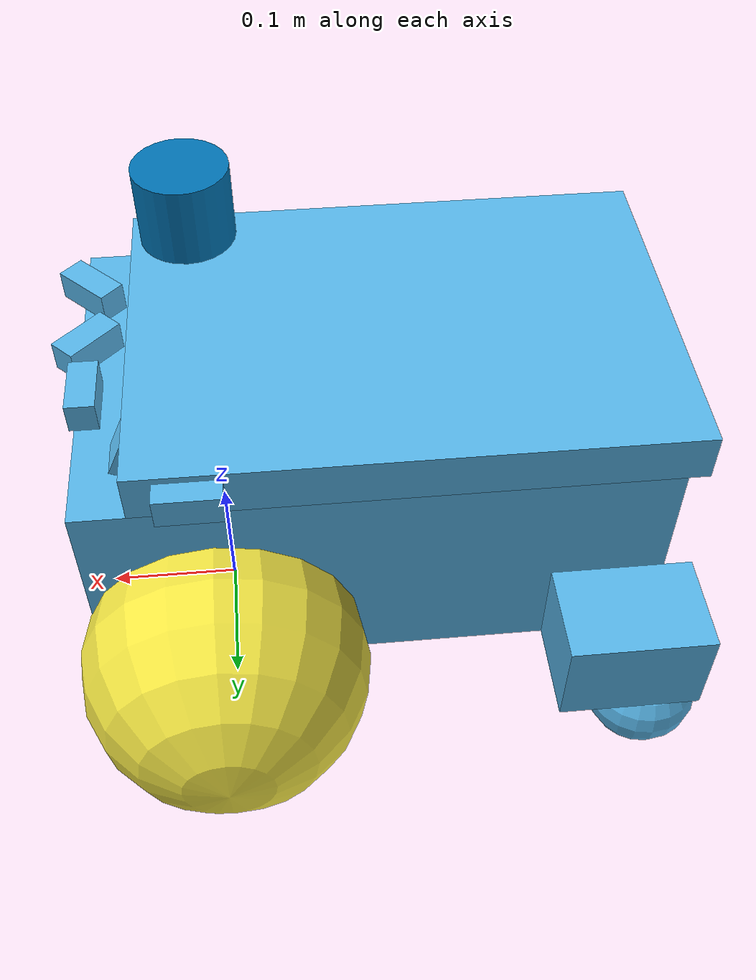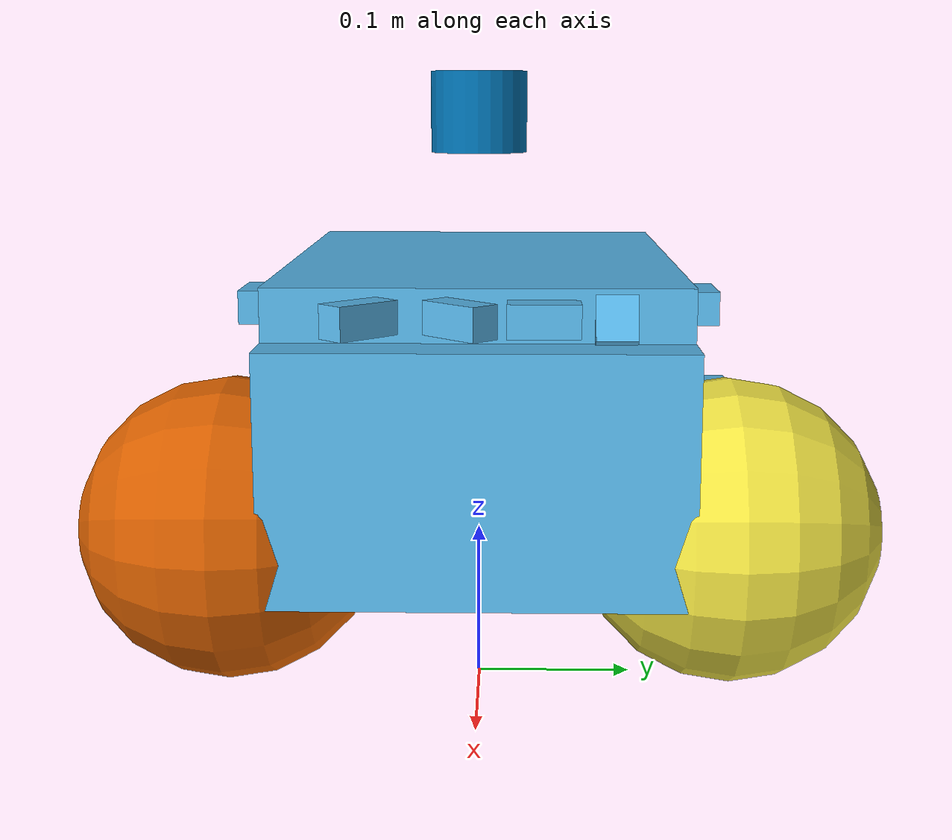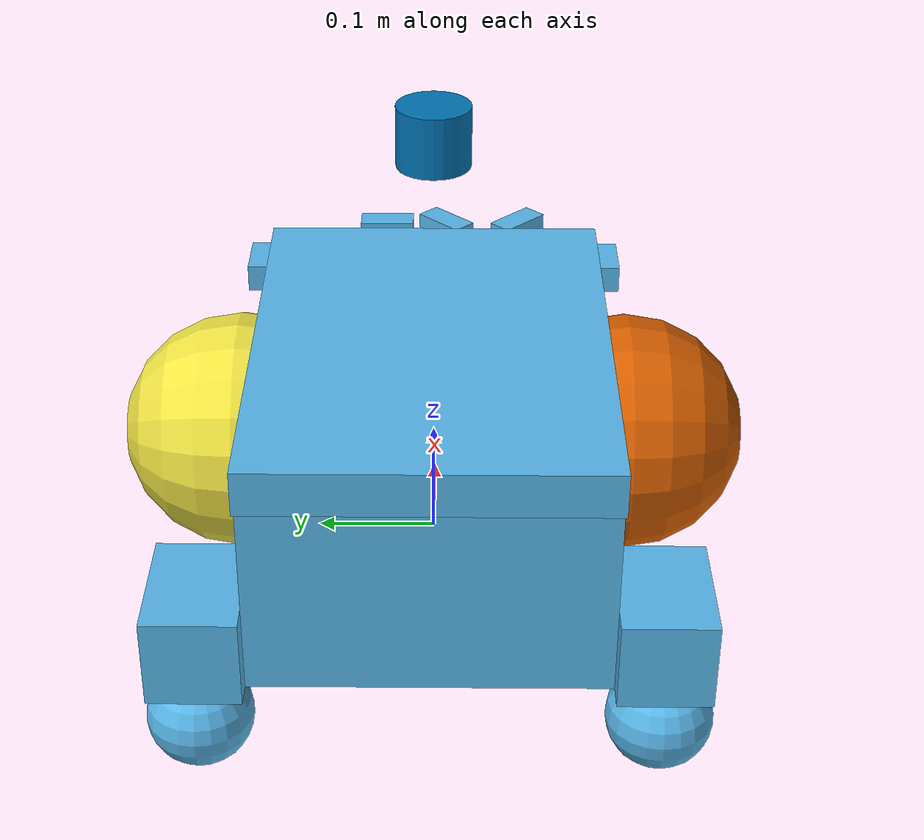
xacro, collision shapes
<robot name="fishbot"
    xmlns:xacro="http://www.ros.org/wiki/xacro">
    <xacro:arg name="namespace" default="" />
    <link name="base_footprint">
        <inertial>
            <mass value="1" />
            <origin xyz="0 0 0" rpy="0 -0 0" />
            <inertia ixx="1" ixy="0" ixz="0" iyy="1" iyz="0" izz="1" />
        </inertial>
    </link>
    <link name="base_link">
        <inertial>
            <mass value="7" />
            <origin xyz="-0.15 0 0.13" rpy="0 -0 0" />
            <inertia ixx="0.0594508" ixy="0" ixz="-2.77556e-17" iyy="0.150753" iyz="0" izz="0.172704" />
        </inertial>
        <visual>
            <origin xyz="-0.11 0 0.071" rpy="0 -0 0" />
            <geometry>
                <mesh filename="package://orient_description/fishbot/meshes/body.dae" scale="1 1 1" />
            </geometry>
        </visual>
        <visual>
            <origin xyz="-0.279 0.17 0.09" rpy="0 0 -3.14159" />
            <geometry>
                <mesh filename="package://orient_description/fishbot/meshes/caster_wheel.dae" scale="1 1 1" />
            </geometry>
        </visual>
        <visual>
            <origin xyz="-0.279 -0.17 0.09" rpy="0 0 -3.14159" />
            <geometry>
                <mesh filename="package://orient_description/fishbot/meshes/caster_wheel.dae" scale="1 1 1" />
            </geometry>
        </visual>
        <collision>
            <origin xyz="-0.11 0 0.151" rpy="0 -0 0" />
            <geometry>
                <box size="0.398 0.268 0.16" />
            </geometry>
        </collision>
        <collision>
            <origin xyz="-0.136 0 0.248" rpy="0 -0 0" />
            <geometry>
                <box size="0.375 0.268 0.034" />
            </geometry>
        </collision>
        <collision>
            <origin xyz="-0.279 0.169 0.106" rpy="0 -0 0" />
            <geometry>
                <box size="0.1 0.07 0.07" />
            </geometry>
        </collision>
        <collision>
            <origin xyz="-0.279 -0.169 0.106" rpy="0 -0 0" />
            <geometry>
                <box size="0.1 0.07 0.07" />
            </geometry>
        </collision>
        <collision>
            <origin xyz="-0.3 0.169 0.04" rpy="0 -0 0" />
            <geometry>
                <sphere radius="0.04" />
            </geometry>
        </collision>
        <collision>
            <origin xyz="0.05 0.085 0.245" rpy="0 -1.15192 3.1415" />
            <geometry>
                <box size="0.03 0.026 0.016" />
            </geometry>
        </collision>
        <collision>
            <origin xyz="-0.3 -0.169 0.04" rpy="0 -0 0" />
            <geometry>
                <sphere radius="0.04" />
            </geometry>
        </collision>
        <collision>
            <origin xyz="0.01 -0.14 0.25" rpy="0 0 -1.5708" />
            <geometry>
                <box size="0.02 0.044 0.021" />
            </geometry>
        </collision>
        <collision>
            <origin xyz="0.08 -0.07 0.25" rpy="0 -0 0.785" />
            <geometry>
                <box size="0.02 0.044 0.021" />
            </geometry>
        </collision>
        <collision>
            <origin xyz="0.08 -0.01 0.25" rpy="0 0 -0.785" />
            <geometry>
                <box size="0.02 0.044 0.021" />
            </geometry>
        </collision>
        <collision>
            <origin xyz="0.08 0.04 0.25" rpy="0 -0 0" />
            <geometry>
                <box size="0.02 0.044 0.021" />
            </geometry>
        </collision>
        <collision>
            <origin xyz="0.01 0.14 0.25" rpy="0 -0 1.5708" />
            <geometry>
                <box size="0.02 0.044 0.021" />
            </geometry>
        </collision>
    </link>
    <link name="imu_link">
        <inertial>
            <mass value="0.1" />
            <origin xyz="0 0 0" rpy="0 -0 0" />
            <inertia ixx="0.0001" ixy="0" ixz="0" iyy="0.0001" iyz="0" izz="0.0001" />
        </inertial>
        <visual>
            <origin xyz="0 0 0" rpy="0 -0 0" />
            <geometry>
                <box size="0.05 0.05 0.02" />
            </geometry>
            <material name="blue">
                <color rgba="0 0 0.8 1" />
            </material>
        </visual>
        <collision>
            <origin xyz="0 0 0" rpy="0 -0 0" />
            <geometry>
                <box size="0.05 0.05 0.02" />
            </geometry>
        </collision>
    </link>
    <link name="left_wheel">
        <inertial>
            <mass value="3.34" />
            <origin xyz="2.77556e-17 -1.38778e-17 0" rpy="0 1.5708 -1.67887e-11" />
            <inertia ixx="0.00904583" ixy="0" ixz="0" iyy="0.00904583" iyz="0" izz="0.0167" />
        </inertial>
        <visual>
            <origin xyz="-0.071 -2.77556e-17 0" rpy="0 -0 0" />
            <geometry>
                <mesh filename="package://orient_description/fishbot/meshes/front_wheel.dae" scale="1 1 1" />
            </geometry>
        </visual>
        <collision>
            <origin xyz="5.55112e-17 -2.77556e-17 0" rpy="0 1.5708 -1.67887e-11" />
            <geometry>
                <sphere radius="0.1" />
            </geometry>
        </collision>
    </link>
    <link name="lidar_link">
        <inertial>
            <mass value="0.01" />
            <origin xyz="0 0 0" rpy="0 -0 0" />
            <inertia ixx="1e-06" ixy="0" ixz="0" iyy="1e-06" iyz="0" izz="1e-06" />
        </inertial>
        <visual>
            <origin xyz="0 0 0" rpy="0 -0 0" />
            <geometry>
                <mesh filename="package://orient_description/fishbot/meshes/sensors/R2000.dae" scale="0.001 0.001 0.001" />
            </geometry>
        </visual>
        <collision>
            <origin xyz="0 0 0" rpy="0 -0 0" />
            <geometry>
                <cylinder radius="0.03" length="0.05" />
            </geometry>
        </collision>
    </link>
    <link name="right_wheel">
        <inertial>
            <mass value="3.34" />
            <origin xyz="-2.77556e-17 1.38778e-17 0" rpy="0 1.5708 -1.67887e-11" />
            <inertia ixx="0.00904583" ixy="0" ixz="0" iyy="0.00904583" iyz="0" izz="0.0167" />
        </inertial>
        <visual>
            <origin xyz="0.071 2.77556e-17 0" rpy="-3.14159 -0 -3.14159" />
            <geometry>
                <mesh filename="package://orient_description/fishbot/meshes/front_wheel.dae" scale="1 1 1" />
            </geometry>
        </visual>
        <collision>
            <origin xyz="-5.55112e-17 2.77556e-17 0" rpy="0 1.5708 -1.67887e-11" />
            <geometry>
                <sphere radius="0.1" />
            </geometry>
        </collision>
    </link>
    <joint name="base_link_joint" type="fixed">
        <origin xyz="0 0 0" rpy="0 -0 0" />
        <axis xyz="0 0 0" />
        <parent link="base_footprint" />
        <child link="base_link" />
    </joint>
    <joint name="imu_fixed_joint" type="fixed">
        <origin xyz="0 0 0.15" rpy="0 -0 0" />
        <axis xyz="0 0 0" />
        <parent link="base_link" />
        <child link="imu_link" />
    </joint>
    <joint name="joint_tire_left" type="revolute">
        <origin xyz="0 0.163 0.1" rpy="0 -0 1.5708" />
        <axis xyz="1 -3.67321e-06 0" />
        <parent link="base_link" />
        <child link="left_wheel" />
        <dynamics damping="0" friction="0" />
        <limit effort="5" velocity="10" lower="-100" upper="100" />
    </joint>
    <joint name="joint_tire_right" type="revolute">
        <origin xyz="0 -0.163 0.1" rpy="0 -0 1.5708" />
        <axis xyz="1 -3.67321e-06 0" />
        <parent link="base_link" />
        <child link="right_wheel" />
        <dynamics damping="0" friction="0" />
        <limit effort="5" velocity="10" lower="-100" upper="100" />
    </joint>
    <joint name="lidar_fixed_joint" type="fixed">
        <origin xyz="0 0 0.37" rpy="0 -0 0" />
        <axis xyz="0 0 0" />
        <parent link="base_link" />
        <child link="lidar_link" />
    </joint>

    <ros2_control name="GazeboSimSystem" type="system">
        <hardware>
            <plugin>orient_gazebo_plugins/GazeboSimSystem</plugin>
        </hardware>
        <joint name="joint_tire_left">
            <command_interface name="velocity">
                <param name="min">-1</param>
                <param name="max">1</param>
            </command_interface>
            <state_interface name="position"/>
            <state_interface name="velocity"/>
        </joint>
        <joint name="joint_tire_right">
            <command_interface name="velocity">
                <param name="min">-1</param>
                <param name="max">1</param>
            </command_interface>
            <state_interface name="position"/>
            <state_interface name="velocity"/>
        </joint>
    </ros2_control>

    <gazebo>
        <plugin filename="orient_gazebo_plugins" name="orient_gazebo_plugins::GazeboSimROS2ControlPlugin">
            <ros>
                <namespace>$(arg namespace)</namespace>
            </ros>
            <parameters>$(find orient_description)/fishbot/params/controller.yaml</parameters>
        </plugin>
    </gazebo>

    <gazebo reference="lidar_link">
        <sensor name='gpu_lidar' type='gpu_lidar'>
            <topic>/scan</topic>
            <update_rate>10</update_rate>
            <lidar>
                <scan>
                    <horizontal>
                        <samples>640</samples>
                        <resolution>1</resolution>
                        <min_angle>-1.396263</min_angle>
                        <max_angle>1.396263</max_angle>
                    </horizontal>
                    <vertical>
                        <samples>16</samples>
                        <resolution>1</resolution>
                        <min_angle>-0.261799</min_angle>
                        <max_angle>0.261799</max_angle>
                    </vertical>
                </scan>
                <range>
                    <min>0.08</min>
                    <max>10.0</max>
                    <resolution>0.01</resolution>
                </range>
            </lidar>
            <alwaysOn>1</alwaysOn>
            <visualize>true</visualize>
        </sensor>
    </gazebo>

    <gazebo reference="imu_link">
        <sensor name="imu" type="imu">
            <always_on>1</always_on>
            <update_rate>100</update_rate>
            <visualize>true</visualize>
            <topic>imu/data</topic>
            <enable_metrics>true</enable_metrics>
        </sensor>
    </gazebo>
</robot>
